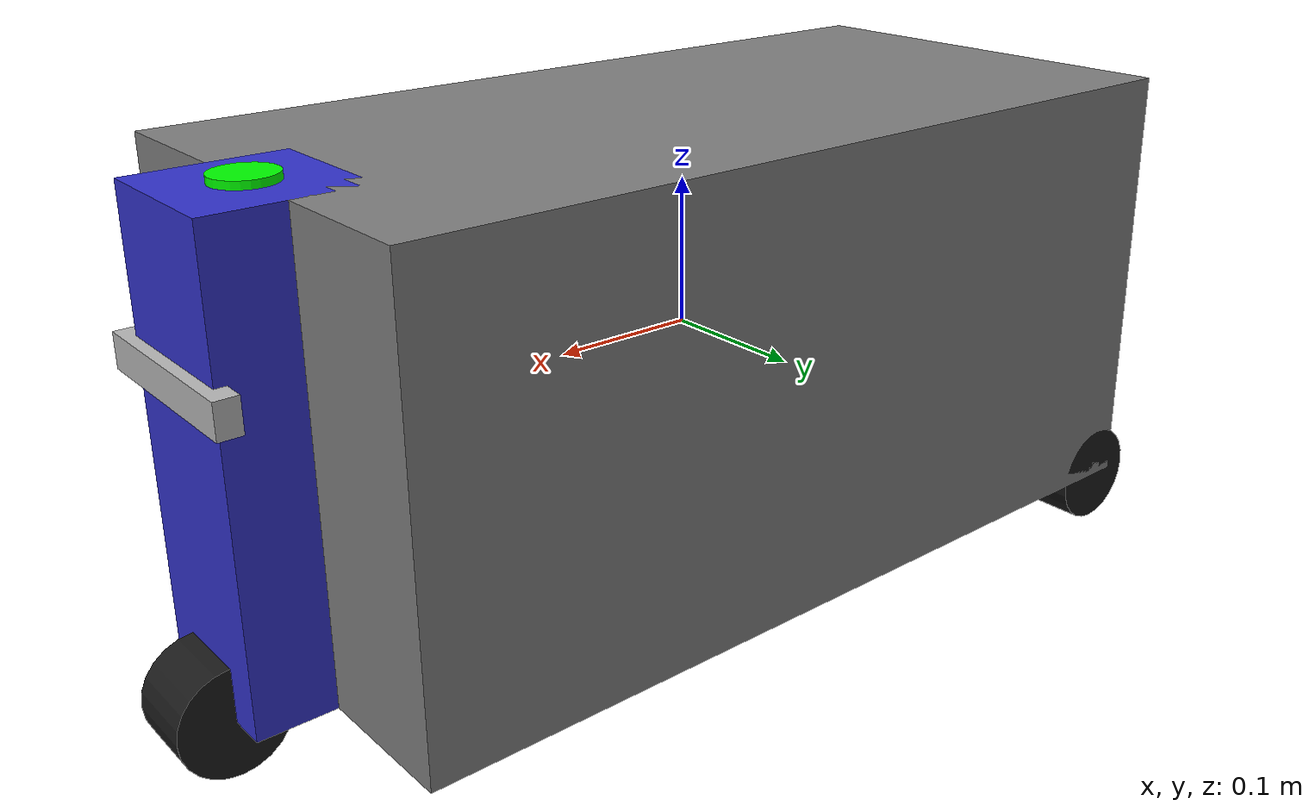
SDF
<?xml version="1.0" ?>
<sdf version="1.7">
  <model name="tortoisebot">

    <link name="base_footprint">
      <!-- Empty link serves as ground reference -->
    </link>

    <!-- Base link with inertial, collisions, visuals -->
    <link name="base_link">
      <inertial>
        <pose>0.027273 0 0.013636 0 0 0</pose>
        <mass>1.1</mass>
        <inertia>
          <ixx>0.0171455</ixx>
          <ixy>0</ixy>
          <ixz>-0.00409091</ixz>
          <iyy>0.0478273</iyy>
          <iyz>0</iyz>
          <izz>0.0457818</izz>
        </inertia>
      </inertial>

      <!-- Base link collision and visual -->
      <collision name="base_link_collision">
        <pose>0 0 0 0 0 0</pose>
        <geometry>
          <box>
            <size>0.6 0.3 0.3</size>
          </box>
        </geometry>
      </collision>

      <visual name="base_link_visual">
        <pose>0 0 0 0 0 0</pose>
        <geometry>
          <box>
            <size>0.6 0.3 0.3</size>
          </box>
        </geometry>
        <material>
          <ambient>0.5 0.5 0.5 1</ambient>
          <diffuse>0.5 0.5 0.5 1</diffuse>
        </material>
      </visual>
    </link>

    <!-- Joint connecting base_footprint to base_link -->
    <joint name="base_footprint_joint" type="fixed">
      <parent>base_footprint</parent>
      <child>base_link</child>
      <pose>0 0 0.15 0 0 0</pose> <!-- Elevate base_link above ground -->
    </joint>

    <!-- Lidar link -->
    <link name="lidar_link">
      <inertial>
        <pose>0.3 0 0.15 0 0 0</pose>
        <mass>0.05</mass>
        <inertia>
          <ixx>6.25e-06</ixx>
          <ixy>0</ixy>
          <ixz>0</ixz>
          <iyy>6.25e-06</iyy>
          <iyz>0</iyz>
          <izz>6.25e-06</izz>
        </inertia>
      </inertial>

      <collision name="lidar_link_collision">
        <pose>0.3 0 0.15 0 0 0</pose>
        <geometry>
          <cylinder>
            <length>0.05</length>
            <radius>0.05</radius>
          </cylinder>
        </geometry>
        <surface>
          <contact>
            <ode/>
          </contact>
          <friction>
            <ode/>
          </friction>
        </surface>
      </collision>

      <visual name="lidar_link_visual">
        <pose>0.3 0 0.15 0 0 0</pose>
        <geometry>
          <cylinder>
            <length>0.01</length>
            <radius>0.02</radius>
          </cylinder>
        </geometry>
        <material>
          <ambient>0 1 0 1</ambient>
          <diffuse>0 1 0 1</diffuse>
        </material>
      </visual>

      <sensor name="lidar_sensor" type="gpu_lidar">
        <pose>0.3 0 0.15 0 0 0</pose>
        <topic>scan</topic>
        <update_rate>10</update_rate>
        <lidar>
          <scan>
            <horizontal>
              <samples>360</samples>
              <resolution>1</resolution>
              <min_angle>-3.14</min_angle>
              <max_angle>3.14</max_angle>
            </horizontal>
            <vertical>
              <samples>1</samples>
              <resolution>1</resolution>
              <min_angle>0</min_angle>
              <max_angle>0.523</max_angle>
            </vertical>
          </scan>
          <range>
            <min>0.12</min>
            <max>5</max>
            <resolution>0.01</resolution>
          </range>
          <noise>
            <type>gaussian</type>
            <mean>0</mean>
            <stddev>0.01</stddev>
          </noise>
        </lidar>
        <always_on>1</always_on>
        <visualize>1</visualize>
      </sensor>
    </link>

    <!-- Lidar joint -->
    <joint name="lidar_joint" type="fixed">
      <pose relative_to="base_link">0.3 0 0.2 0 0 0</pose>
      <parent>base_link</parent>
      <child>lidar_link</child>
    </joint>

    <joint name="camera_joint" type="fixed">
      <parent>base_link</parent>
      <child>camera_link</child>
      <pose relative_to="base_link">0.35 0 0.05 0 0 0</pose>
    </joint>

    <link name="camera_link">
      <pose relative_to="camera_joint"/>
      <visual name="camera_link_visual">
        <geometry>
          <box><size>
            0.015 0.130 0.0222
          </size></box>
        </geometry>
      </visual>

    <collision name="camera_link_collision">
      <geometry>
        <box><size>
          0.015 0.130 0.0222
        </size></box>
      </geometry>
    </collision>

      <sensor name="depth_camera" type="rgbd">
          <always_on>true</always_on>
          <visualize>true</visualize>
          <update_rate>10.0</update_rate>
          <topic>depth_camera</topic>
          <gz_frame_id>camera_link</gz_frame_id>
          <camera>
            <horizontal_fov>1.089</horizontal_fov>
            <image>
              <width>320</width>
              <height>240</height>
            </image>
            <clip>
              <near>0.05</near>
              <far>2.5</far>
            </clip>
            <depth_camera>
               <output_type>color_point_cloud</output_type>
            </depth_camera>
          </camera>
          <baseline>0.2</baseline>
          <pointCloudCutoff>0.5</pointCloudCutoff>
          <pointCloudCutoffMax>3.0</pointCloudCutoffMax>
          <distortionK1>0</distortionK1>
          <distortionK2>0</distortionK2>
          <distortionK3>0</distortionK3>
          <distortionT1>0</distortionT1>
          <distortionT2>0</distortionT2>
          <CxPrime>0</CxPrime>
          <Cx>0</Cx>
          <Cy>0</Cy>
          <focalLength>0</focalLength>
          <hackBaseline>0</hackBaseline>

            <plugin name="depth_camera_plugin" filename="gz-sim-depth-camera-system">
              <topic>/depth_camera/points</topic>
            </plugin>
      </sensor>
   </link>

    <!-- Front caster joint and link -->
    <joint name="front_caster_joint" type="revolute">
      <pose relative_to="base_link">0.3 0 0 0 0 0</pose>
      <parent>base_link</parent>
      <child>front_caster</child>
      <axis>
        <xyz>0 0 1</xyz>
        <limit>
          <lower>-1e+16</lower>
          <upper>1e+16</upper>
        </limit>
        <dynamics>
          <spring_reference>0</spring_reference>
          <spring_stiffness>0</spring_stiffness>
        </dynamics>
      </axis>
    </joint>

    <link name="front_caster">
      <pose relative_to="front_caster_joint">0 0 0 0 0 0</pose>
      <inertial>
        <pose>0 0 0 0 0 0</pose>
        <mass>0.1</mass>
        <inertia>
          <ixx>0.00083</ixx>
          <ixy>0</ixy>
          <ixz>0</ixz>
          <iyy>0.00083</iyy>
          <iyz>0</iyz>
          <izz>0.000167</izz>
        </inertia>
      </inertial>

      <collision name="front_caster_collision">
        <pose>0 0 0 0 0 0</pose>
        <geometry>
          <box>
            <size>0.1 0.1 0.3</size>
          </box>
        </geometry>
      </collision>

      <visual name="front_caster_visual">
        <pose>0 0 0 0 0 0</pose>
        <geometry>
          <box>
            <size>0.1 0.1 0.3</size>
          </box>
        </geometry>
        <material>
          <ambient>0.2 0.2 0.8 1</ambient>
          <diffuse>0.2 0.2 0.8 1</diffuse>
        </material>
      </visual>
    </link>

    <!-- Front wheel joint and link -->
    <joint name="front_wheel_joint" type="revolute">
      <pose relative_to="front_caster">0.05 0 -0.15 -1.5708 0 0</pose>
      <parent>front_caster</parent>
      <child>front_wheel</child>
      <axis>
        <xyz>0 0 1</xyz>
        <limit>
          <lower>-1e+16</lower>
          <upper>1e+16</upper>
        </limit>
        <dynamics>
          <spring_reference>0</spring_reference>
          <spring_stiffness>0</spring_stiffness>
        </dynamics>
      </axis>
    </joint>

    <link name="front_wheel">
      <pose relative_to="front_wheel_joint">0 0 0 0 0 0</pose>
      <inertial>
        <pose>0 0 0 0 0 0</pose>
        <mass>0.1</mass>
        <inertia>
          <ixx>5.1458e-05</ixx>
          <ixy>0</ixy>
          <ixz>0</ixz>
          <iyy>5.1458e-05</iyy>
          <iyz>0</iyz>
          <izz>6.125e-05</izz>
        </inertia>
      </inertial>

      <collision name="front_wheel_collision">
        <pose>0 0 0 0 0 0</pose>
        <geometry>
          <cylinder>
            <length>0.05</length>
            <radius>0.035</radius>
          </cylinder>
        </geometry>
      </collision>

      <visual name="front_wheel_visual">
        <pose>0 0 0 0 0 0</pose>
        <geometry>
          <cylinder>
            <length>0.05</length>
            <radius>0.035</radius>
          </cylinder>
        </geometry>
        <material>
          <ambient>0.1 0.1 0.1 1</ambient>
          <diffuse>0.1 0.1 0.1 1</diffuse>
        </material>
      </visual>
    </link>

    <!-- Left wheel joint and link -->
    <joint name="left_wheel_joint" type="revolute">
      <pose relative_to="base_link">-0.2825 0.125 -0.15 -1.5708 0 0</pose>
      <parent>base_link</parent>
      <child>left_wheel</child>
      <axis>
        <xyz>0 0 1</xyz>
        <limit>
          <lower>-1e+16</lower>
          <upper>1e+16</upper>
        </limit>
        <dynamics>
          <spring_reference>0</spring_reference>
          <spring_stiffness>0</spring_stiffness>
        </dynamics>
      </axis>
    </joint>

    <link name="left_wheel">
      <pose relative_to="left_wheel_joint">0 0 0 0 0 0</pose>
      <inertial>
        <pose>0 0 0 0 0 0</pose>
        <mass>0.1</mass>
        <inertia>
          <ixx>5.1458e-05</ixx>
          <ixy>0</ixy>
          <ixz>0</ixz>
          <iyy>5.1458e-05</iyy>
          <iyz>0</iyz>
          <izz>6.125e-05</izz>
        </inertia>
      </inertial>

      <collision name="left_wheel_collision">
        <pose>0 0 0 0 0 0</pose>
        <geometry>
          <cylinder>
            <length>0.05</length>
            <radius>0.035</radius>
          </cylinder>
        </geometry>
      </collision>

      <visual name="left_wheel_visual">
        <pose>0 0 0 0 0 0</pose>
        <geometry>
          <cylinder>
            <length>0.05</length>
            <radius>0.035</radius>
          </cylinder>
        </geometry>
        <material>
          <ambient>0.1 0.1 0.1 1</ambient>
          <diffuse>0.1 0.1 0.1 1</diffuse>
        </material>
      </visual>
    </link>

    <!-- Right wheel joint and link -->
    <joint name="right_wheel_joint" type="revolute">
      <pose relative_to="base_link">-0.2825 -0.125 -0.15 -1.5708 0 0</pose>
      <parent>base_link</parent>
      <child>right_wheel</child>
      <axis>
        <xyz>0 0 1</xyz>
        <limit>
          <lower>-1e+16</lower>
          <upper>1e+16</upper>
        </limit>
        <dynamics>
          <spring_reference>0</spring_reference>
          <spring_stiffness>0</spring_stiffness>
        </dynamics>
      </axis>
    </joint>

    <link name="right_wheel">
      <pose relative_to="right_wheel_joint">0 0 0 0 0 0</pose>
      <inertial>
        <pose>0 0 0 0 0 0</pose>
        <mass>0.1</mass>
        <inertia>
          <ixx>5.1458e-05</ixx>
          <ixy>0</ixy>
          <ixz>0</ixz>
          <iyy>5.1458e-05</iyy>
          <iyz>0</iyz>
          <izz>6.125e-05</izz>
        </inertia>
      </inertial>

      <collision name="right_wheel_collision">
        <pose>0 0 0 0 0 0</pose>
        <geometry>
          <cylinder>
            <length>0.05</length>
            <radius>0.035</radius>
          </cylinder>
        </geometry>
      </collision>

      <visual name="right_wheel_visual">
        <pose>0 0 0 0 0 0</pose>
        <geometry>
          <cylinder>
            <length>0.05</length>
            <radius>0.035</radius>
          </cylinder>
        </geometry>
        <material>
          <ambient>0.1 0.1 0.1 1</ambient>
          <diffuse>0.1 0.1 0.1 1</diffuse>
        </material>
      </visual>
    </link>

    <static>0</static>

    <!-- Differential drive plugin for Gazebo Harmonic -->
    <plugin filename="gz-sim-diff-drive-system" name="gz::sim::systems::DiffDrive">
      <left_joint>left_wheel_joint</left_joint>
      <right_joint>right_wheel_joint</right_joint>
      <wheel_separation>0.25</wheel_separation>
      <wheel_radius>0.035</wheel_radius>
      <odom_publish_frequency>50</odom_publish_frequency>
      <topic>cmd_vel</topic>
      <odom_topic>odom</odom_topic>
      <frame_id>odom</frame_id>
      <child_frame_id>base_footprint</child_frame_id>
    </plugin>

    <!-- ROS2 Bridge Plugin -->
    <plugin filename="gz-sim-ros2-system" name="ros_gz_sim::systems::Ros2Bridge">
      <ros>
        <namespace>/</namespace>
        <remapping>odom:=odom</remapping>
        <remapping>cmd_vel:=cmd_vel</remapping>
        <remapping>joint_states:=joint_states</remapping>
      </ros>
    </plugin>

    <!-- Enhanced Joint State Publisher Plugin - includes ALL joints -->
    <plugin filename="gz-sim-joint-state-publisher-system" name="gz::sim::systems::JointStatePublisher">
      <topic>joint_states</topic>
      <joint_name>left_wheel_joint</joint_name>
      <joint_name>right_wheel_joint</joint_name>
      <joint_name>front_caster_joint</joint_name>
      <joint_name>front_wheel_joint</joint_name>
      <joint_name>base_footprint_joint</joint_name>
      <joint_name>lidar_joint</joint_name>
      <joint_name>camera_joint</joint_name>

      <update_rate>50</update_rate>
    </plugin>

    <!-- Odometry Publisher Plugin -->
    <plugin filename="gz-sim-odometry-publisher-system" name="gz::sim::systems::OdometryPublisher">
      <odom_frame>odom</odom_frame>
      <robot_base_frame>base_footprint</robot_base_frame>
      <odom_publish_frequency>50</odom_publish_frequency>
      <odom_topic>/odom</odom_topic>
      <tf_topic>/tf</tf_topic>
    </plugin>

    <!-- ROS2 Laser Scan Plugin with correct sensor name and frame -->
    <plugin filename="gz-sim-sensors-system" name="gz::sim::systems::Sensors">
      <render_engine>ogre2</render_engine>
    </plugin>

  </model>
</sdf>
